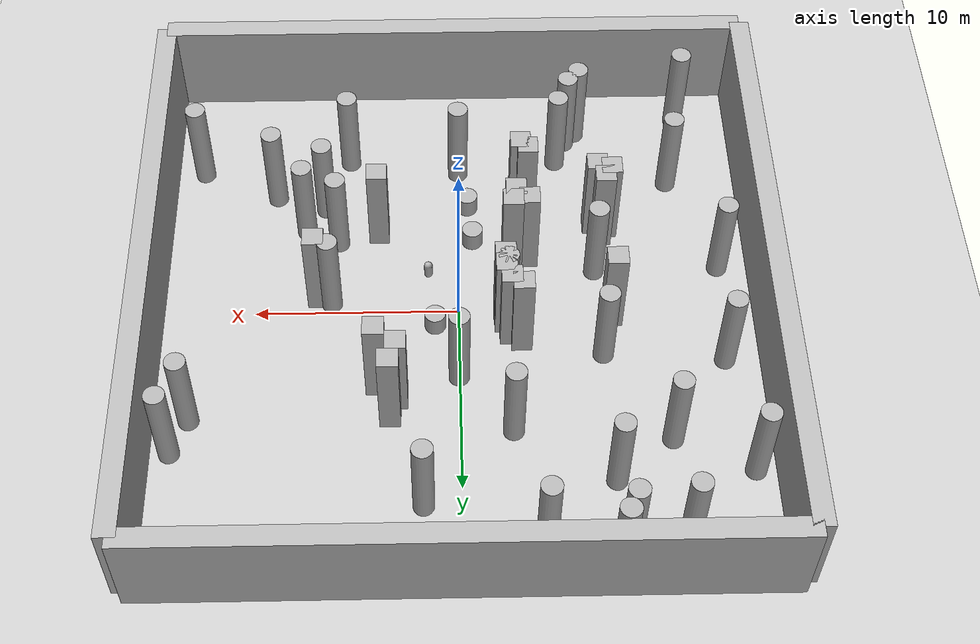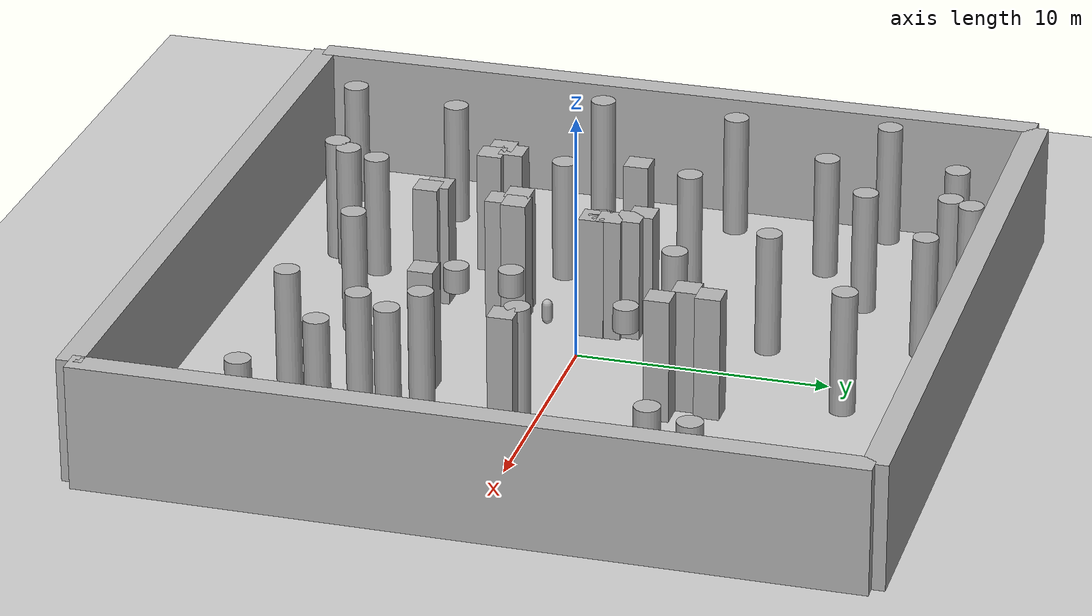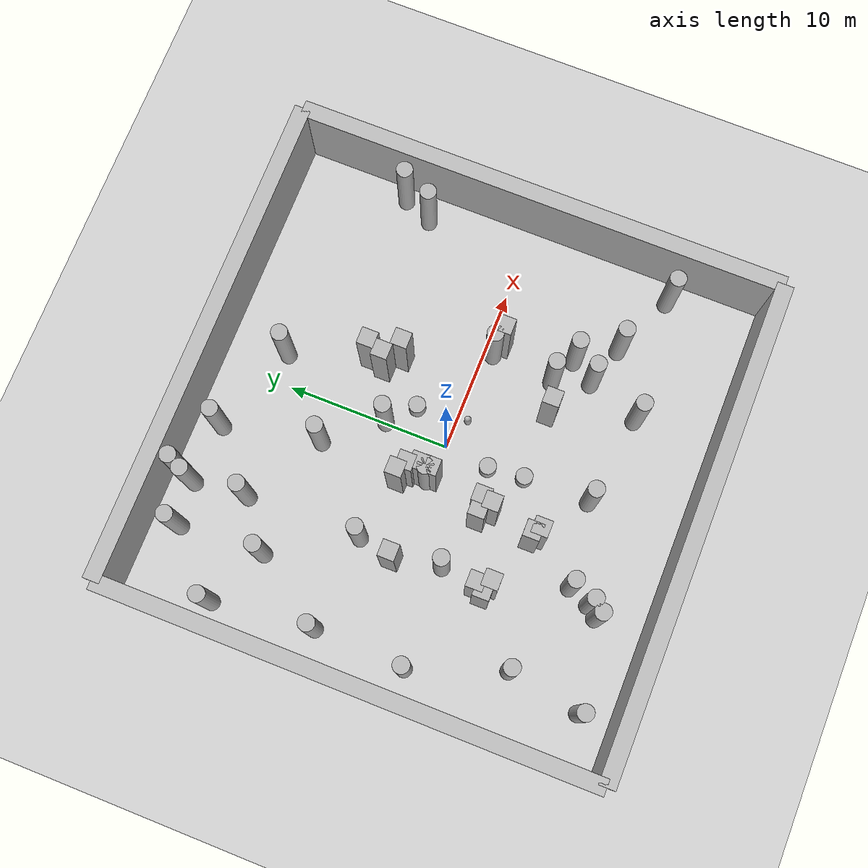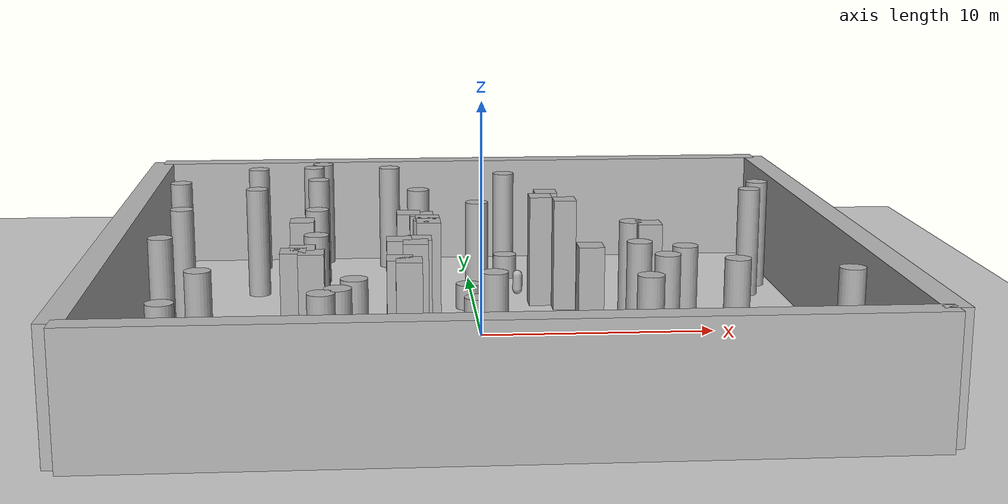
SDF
<sdf version="1.10">
 <world name="map">
  <physics name="1ms" type="ignored">
   <max_step_size>0.001</max_step_size>
   <real_time_factor>1</real_time_factor>
  </physics>
  <plugin filename="gz-sim-physics-system" name="gz::sim::systems::Physics"/>
  <plugin filename="gz-sim-sensors-system" name="gz::sim::systems::Sensors">
   <render_engine>ogre2</render_engine>
  </plugin>
  <plugin filename="gz-sim-user-commands-system" name="gz::sim::systems::UserCommands"/>
  <plugin filename="gz-sim-scene-broadcaster-system" name="gz::sim::systems::SceneBroadcaster"/>
  <plugin filename="gz-sim-air-pressure-system" name="gz::sim::systems::AirPressure"/>
  <plugin filename="gz-sim-air-speed-system" name="gz::sim::systems::AirSpeed"/>
  <plugin filename="gz-sim-altimeter-system" name="gz::sim::systems::Altimeter"/>
  <plugin filename="gz-sim-imu-system" name="gz::sim::systems::Imu"/>
  <plugin filename="gz-sim-magnetometer-system" name="gz::sim::systems::Magnetometer"/>
  <plugin filename="gz-sim-navsat-system" name="gz::sim::systems::NavSat"/>
  <atmosphere type="adiabatic"/>
  <scene>
   <ambient>0.400000006 0.400000006 0.400000006 1</ambient>
   <background>0.699999988 0.699999988 0.699999988 1</background>
   <shadows>true</shadows>
  </scene>
  <model name="ground_plane">
   <static>true</static>
   <link name="link">
    <collision name="collision">
     <geometry><plane><normal>0 0 1</normal><size>100 100</size></plane></geometry>
    </collision>
    <visual name="visual">
     <geometry><plane><normal>0 0 1</normal><size>100 100</size></plane></geometry>
     <material>
      <ambient>0.800000012 0.800000012 0.800000012 1</ambient>
      <diffuse>0.800000012 0.800000012 0.800000012 1</diffuse>
      <specular>0.800000012 0.800000012 0.800000012 1</specular>
     </material>
    </visual>
    <inertial>
     <mass>1</mass>
     <inertia><ixx>1</ixx><ixy>0</ixy><ixz>0</ixz><iyy>1</iyy><iyz>0</iyz><izz>1</izz></inertia>
    </inertial>
   </link>
  </model>
  <model name="box">
   <pose>3.3245237272664223 6.137337572602199 2.5 0 0 0</pose>
   <link name="box_link">
    <inertial>
     <inertia><ixx>0.16666</ixx><ixy>0</ixy><ixz>0</ixz><iyy>0.16666</iyy><iyz>0</iyz><izz>0.16666</izz></inertia>
     <mass>1</mass>
    </inertial>
    <collision name="box_collision"><geometry><box><size>1 1 5</size></box></geometry></collision>
    <visual name="box_visual">
     <geometry><box><size>1 1 5</size></box></geometry>
     <material>
      <ambient>0.300000012 0.300000012 0.300000012 1</ambient>
      <diffuse>0.699999988 0.699999988 0.699999988 1</diffuse>
      <specular>1 1 1 1</specular>
     </material>
    </visual>
   </link>
   <static>false</static>
  </model>
  <model name="cylinder">
   <pose>-0.72203590736623369 -2.8243370734408528 2.5 0 0 0</pose>
   <link name="cylinder_link">
    <inertial>
     <inertia>
      <ixx>0.14580000000000001</ixx>
      <ixy>0</ixy>
      <ixz>0</ixz>
      <iyy>0.14580000000000001</iyy>
      <iyz>0</iyz>
      <izz>0.125</izz>
     </inertia>
     <mass>1</mass>
    </inertial>
    <collision name="cylinder_collision">
     <geometry><cylinder><radius>0.5</radius><length>1</length></cylinder></geometry>
    </collision>
    <visual name="cylinder_visual">
     <geometry><cylinder><radius>0.5</radius><length>1</length></cylinder></geometry>
     <material>
      <ambient>0.300000012 0.300000012 0.300000012 1</ambient>
      <diffuse>0.699999988 0.699999988 0.699999988 1</diffuse>
      <specular>1 1 1 1</specular>
     </material>
    </visual>
   </link>
   <static>false</static>
  </model>
  <model name="box_0">
   <pose>2.9897288248366607 5.15230320680541 2.5 0 0 0</pose>
   <link name="box_link">
    <inertial>
     <inertia><ixx>0.16666</ixx><ixy>0</ixy><ixz>0</ixz><iyy>0.16666</iyy><iyz>0</iyz><izz>0.16666</izz></inertia>
     <mass>1</mass>
    </inertial>
    <collision name="box_collision"><geometry><box><size>1 1 5</size></box></geometry></collision>
    <visual name="box_visual">
     <geometry><box><size>1 1 5</size></box></geometry>
     <material>
      <ambient>0.300000012 0.300000012 0.300000012 1</ambient>
      <diffuse>0.699999988 0.699999988 0.699999988 1</diffuse>
      <specular>1 1 1 1</specular>
     </material>
    </visual>
   </link>
   <static>false</static>
  </model>
  <model name="box_1">
   <pose>3.9948109669313716 4.3431861216919927 2.5 0 0 0</pose>
   <link name="box_link">
    <inertial>
     <inertia><ixx>0.16666</ixx><ixy>0</ixy><ixz>0</ixz><iyy>0.16666</iyy><iyz>0</iyz><izz>0.16666</izz></inertia>
     <mass>1</mass>
    </inertial>
    <collision name="box_collision"><geometry><box><size>1 1 5</size></box></geometry></collision>
    <visual name="box_visual">
     <geometry><box><size>1 1 5</size></box></geometry>
     <material>
      <ambient>0.300000012 0.300000012 0.300000012 1</ambient>
      <diffuse>0.699999988 0.699999988 0.699999988 1</diffuse>
      <specular>1 1 1 1</specular>
     </material>
    </visual>
   </link>
   <static>false</static>
  </model>
  <model name="box_2">
   <pose>-6.9158057635143422 -5.3925937900630387 2.5 0 0 0</pose>
   <link name="box_link">
    <inertial>
     <inertia><ixx>0.16666</ixx><ixy>0</ixy><ixz>0</ixz><iyy>0.16666</iyy><iyz>0</iyz><izz>0.16666</izz></inertia>
     <mass>1</mass>
    </inertial>
    <collision name="box_collision"><geometry><box><size>1 1 5</size></box></geometry></collision>
    <visual name="box_visual">
     <geometry><box><size>1 1 5</size></box></geometry>
     <material>
      <ambient>0.300000012 0.300000012 0.300000012 1</ambient>
      <diffuse>0.699999988 0.699999988 0.699999988 1</diffuse>
      <specular>1 1 1 1</specular>
     </material>
    </visual>
   </link>
   <static>false</static>
  </model>
  <model name="box_3">
   <pose>-7.6136462022371774 -5.142927832510038 2.5 0 0 0</pose>
   <link name="box_link">
    <inertial>
     <inertia><ixx>0.16666</ixx><ixy>0</ixy><ixz>0</ixz><iyy>0.16666</iyy><iyz>0</iyz><izz>0.16666</izz></inertia>
     <mass>1</mass>
    </inertial>
    <collision name="box_collision"><geometry><box><size>1 1 5</size></box></geometry></collision>
    <visual name="box_visual">
     <geometry><box><size>1 1 5</size></box></geometry>
     <material>
      <ambient>0.300000012 0.300000012 0.300000012 1</ambient>
      <diffuse>0.699999988 0.699999988 0.699999988 1</diffuse>
      <specular>1 1 1 1</specular>
     </material>
    </visual>
   </link>
   <static>false</static>
  </model>
  <model name="box_4">
   <pose>-7.2855342701932955 -4.6225314286755168 2.5 0 0 0</pose>
   <link name="box_link">
    <inertial>
     <inertia><ixx>0.16666</ixx><ixy>0</ixy><ixz>0</ixz><iyy>0.16666</iyy><iyz>0</iyz><izz>0.16666</izz></inertia>
     <mass>1</mass>
    </inertial>
    <collision name="box_collision"><geometry><box><size>1 1 5</size></box></geometry></collision>
    <visual name="box_visual">
     <geometry><box><size>1 1 5</size></box></geometry>
     <material>
      <ambient>0.300000012 0.300000012 0.300000012 1</ambient>
      <diffuse>0.699999988 0.699999988 0.699999988 1</diffuse>
      <specular>1 1 1 1</specular>
     </material>
    </visual>
   </link>
   <static>false</static>
  </model>
  <model name="box_5">
   <pose>-3.0213739192808333 1.8634544273041493 2.5 0 0 0</pose>
   <link name="box_link">
    <inertial>
     <inertia><ixx>0.16666</ixx><ixy>0</ixy><ixz>0</ixz><iyy>0.16666</iyy><iyz>0</iyz><izz>0.16666</izz></inertia>
     <mass>1</mass>
    </inertial>
    <collision name="box_collision"><geometry><box><size>1 1 5</size></box></geometry></collision>
    <visual name="box_visual">
     <geometry><box><size>1 1 5</size></box></geometry>
     <material>
      <ambient>0.300000012 0.300000012 0.300000012 1</ambient>
      <diffuse>0.699999988 0.699999988 0.699999988 1</diffuse>
      <specular>1 1 1 1</specular>
     </material>
    </visual>
   </link>
   <static>false</static>
  </model>
  <model name="box_6">
   <pose>-2.4786264444795165 1.475592770159146 2.5 0 0 0</pose>
   <link name="box_link">
    <inertial>
     <inertia><ixx>0.16666</ixx><ixy>0</ixy><ixz>0</ixz><iyy>0.16666</iyy><iyz>0</iyz><izz>0.16666</izz></inertia>
     <mass>1</mass>
    </inertial>
    <collision name="box_collision"><geometry><box><size>1 1 5</size></box></geometry></collision>
    <visual name="box_visual">
     <geometry><box><size>1 1 5</size></box></geometry>
     <material>
      <ambient>0.300000012 0.300000012 0.300000012 1</ambient>
      <diffuse>0.699999988 0.699999988 0.699999988 1</diffuse>
      <specular>1 1 1 1</specular>
     </material>
    </visual>
   </link>
   <static>false</static>
  </model>
  <model name="box_7">
   <pose>-2.2465629230384287 0.76769296150061628 2.5 0 0 0</pose>
   <link name="box_link">
    <inertial>
     <inertia><ixx>0.16666</ixx><ixy>0</ixy><ixz>0</ixz><iyy>0.16666</iyy><iyz>0</iyz><izz>0.16666</izz></inertia>
     <mass>1</mass>
    </inertial>
    <collision name="box_collision"><geometry><box><size>1 1 5</size></box></geometry></collision>
    <visual name="box_visual">
     <geometry><box><size>1 1 5</size></box></geometry>
     <material>
      <ambient>0.300000012 0.300000012 0.300000012 1</ambient>
      <diffuse>0.699999988 0.699999988 0.699999988 1</diffuse>
      <specular>1 1 1 1</specular>
     </material>
    </visual>
   </link>
   <static>false</static>
  </model>
  <model name="box_8">
   <pose>-2.2234519485298136 0.095993541585208675 2.5 0 0 0</pose>
   <link name="box_link">
    <inertial>
     <inertia><ixx>0.16666</ixx><ixy>0</ixy><ixz>0</ixz><iyy>0.16666</iyy><iyz>0</iyz><izz>0.16666</izz></inertia>
     <mass>1</mass>
    </inertial>
    <collision name="box_collision"><geometry><box><size>1 1 5</size></box></geometry></collision>
    <visual name="box_visual">
     <geometry><box><size>1 1 5</size></box></geometry>
     <material>
      <ambient>0.300000012 0.300000012 0.300000012 1</ambient>
      <diffuse>0.699999988 0.699999988 0.699999988 1</diffuse>
      <specular>1 1 1 1</specular>
     </material>
    </visual>
   </link>
   <static>false</static>
  </model>
  <model name="cylinder_0">
   <pose>-0.50989404792879967 -4.9760559913132347 2.5 0 0 0</pose>
   <link name="cylinder_link">
    <inertial>
     <inertia>
      <ixx>0.14580000000000001</ixx>
      <ixy>0</ixy>
      <ixz>0</ixz>
      <iyy>0.14580000000000001</iyy>
      <iyz>0</iyz>
      <izz>0.125</izz>
     </inertia>
     <mass>1</mass>
    </inertial>
    <collision name="cylinder_collision">
     <geometry><cylinder><radius>0.5</radius><length>1</length></cylinder></geometry>
    </collision>
    <visual name="cylinder_visual">
     <geometry><cylinder><radius>0.5</radius><length>1</length></cylinder></geometry>
     <material>
      <ambient>0.300000012 0.300000012 0.300000012 1</ambient>
      <diffuse>0.699999988 0.699999988 0.699999988 1</diffuse>
      <specular>1 1 1 1</specular>
     </material>
    </visual>
   </link>
   <static>false</static>
  </model>
  <model name="capsule">
   <pose>1.4533725246880671 -0.74794199459035937 2.5 0 0 0</pose>
   <link name="capsule_link">
    <inertial>
     <inertia>
      <ixx>0.074153999999999998</ixx>
      <ixy>0</ixy>
      <ixz>0</ixz>
      <iyy>0.074153999999999998</iyy>
      <iyz>0</iyz>
      <izz>0.018769000000000001</izz>
     </inertia>
     <mass>1</mass>
    </inertial>
    <collision name="capsule_collision">
     <geometry>
      <capsule><radius>0.20000000000000001</radius><length>0.59999999999999998</length></capsule>
     </geometry>
    </collision>
    <visual name="capsule_visual">
     <geometry>
      <capsule><radius>0.20000000000000001</radius><length>0.59999999999999998</length></capsule>
     </geometry>
     <material>
      <ambient>0.300000012 0.300000012 0.300000012 1</ambient>
      <diffuse>0.699999988 0.699999988 0.699999988 1</diffuse>
      <specular>1 1 1 1</specular>
     </material>
    </visual>
   </link>
   <static>false</static>
  </model>
  <model name="cylinder_1">
   <pose>1.1536750640728535 2.2748950176591531 2.5 0 0 0</pose>
   <link name="cylinder_link">
    <inertial>
     <inertia>
      <ixx>0.14580000000000001</ixx>
      <ixy>0</ixy>
      <ixz>0</ixz>
      <iyy>0.14580000000000001</iyy>
      <iyz>0</iyz>
      <izz>0.125</izz>
     </inertia>
     <mass>1</mass>
    </inertial>
    <collision name="cylinder_collision">
     <geometry><cylinder><radius>0.5</radius><length>1</length></cylinder></geometry>
    </collision>
    <visual name="cylinder_visual">
     <geometry><cylinder><radius>0.5</radius><length>1</length></cylinder></geometry>
     <material>
      <ambient>0.300000012 0.300000012 0.300000012 1</ambient>
      <diffuse>0.699999988 0.699999988 0.699999988 1</diffuse>
      <specular>1 1 1 1</specular>
     </material>
    </visual>
   </link>
   <static>false</static>
  </model>
  <model name="box_9">
   <pose>6.9234266521545145 -0.89752316878740324 2.5 0 0 0</pose>
   <link name="box_link">
    <inertial>
     <inertia><ixx>0.16666</ixx><ixy>0</ixy><ixz>0</ixz><iyy>0.16666</iyy><iyz>0</iyz><izz>0.16666</izz></inertia>
     <mass>1</mass>
    </inertial>
    <collision name="box_collision"><geometry><box><size>1 1 5</size></box></geometry></collision>
    <visual name="box_visual">
     <geometry><box><size>1 1 5</size></box></geometry>
     <material>
      <ambient>0.300000012 0.300000012 0.300000012 1</ambient>
      <diffuse>0.699999988 0.699999988 0.699999988 1</diffuse>
      <specular>1 1 1 1</specular>
     </material>
    </visual>
   </link>
   <static>false</static>
  </model>
  <model name="box_10">
   <pose>-7.4943273373032717 0.47922763391659196 2.5 0 0 0</pose>
   <link name="box_link">
    <inertial>
     <inertia><ixx>0.16666</ixx><ixy>0</ixy><ixz>0</ixz><iyy>0.16666</iyy><iyz>0</iyz><izz>0.16666</izz></inertia>
     <mass>1</mass>
    </inertial>
    <collision name="box_collision"><geometry><box><size>1 1 5</size></box></geometry></collision>
    <visual name="box_visual">
     <geometry><box><size>1 1 5</size></box></geometry>
     <material>
      <ambient>0.300000012 0.300000012 0.300000012 1</ambient>
      <diffuse>0.699999988 0.699999988 0.699999988 1</diffuse>
      <specular>1 1 1 1</specular>
     </material>
    </visual>
   </link>
   <static>false</static>
  </model>
  <model name="box_11">
   <pose>3.9416168242545098 -4.9045093547489529 2.5 0 0 0</pose>
   <link name="box_link">
    <inertial>
     <inertia><ixx>0.16666</ixx><ixy>0</ixy><ixz>0</ixz><iyy>0.16666</iyy><iyz>0</iyz><izz>0.16666</izz></inertia>
     <mass>1</mass>
    </inertial>
    <collision name="box_collision"><geometry><box><size>1 1 5</size></box></geometry></collision>
    <visual name="box_visual">
     <geometry><box><size>1 1 5</size></box></geometry>
     <material>
      <ambient>0.300000012 0.300000012 0.300000012 1</ambient>
      <diffuse>0.699999988 0.699999988 0.699999988 1</diffuse>
      <specular>1 1 1 1</specular>
     </material>
    </visual>
   </link>
   <static>false</static>
  </model>
  <model name="box_12">
   <pose>-3.1907677776918426 -6.9076576333268314 2.5 0 0 0</pose>
   <link name="box_link">
    <inertial>
     <inertia><ixx>0.16666</ixx><ixy>0</ixy><ixz>0</ixz><iyy>0.16666</iyy><iyz>0</iyz><izz>0.16666</izz></inertia>
     <mass>1</mass>
    </inertial>
    <collision name="box_collision"><geometry><box><size>1 1 5</size></box></geometry></collision>
    <visual name="box_visual">
     <geometry><box><size>1 1 5</size></box></geometry>
     <material>
      <ambient>0.300000012 0.300000012 0.300000012 1</ambient>
      <diffuse>0.699999988 0.699999988 0.699999988 1</diffuse>
      <specular>1 1 1 1</specular>
     </material>
    </visual>
   </link>
   <static>false</static>
  </model>
  <model name="box_13">
   <pose>-3.5319714827078954 -6.55103836573966 2.5 0 0 0</pose>
   <link name="box_link">
    <inertial>
     <inertia><ixx>0.16666</ixx><ixy>0</ixy><ixz>0</ixz><iyy>0.16666</iyy><iyz>0</iyz><izz>0.16666</izz></inertia>
     <mass>1</mass>
    </inertial>
    <collision name="box_collision"><geometry><box><size>1 1 5</size></box></geometry></collision>
    <visual name="box_visual">
     <geometry><box><size>1 1 5</size></box></geometry>
     <material>
      <ambient>0.300000012 0.300000012 0.300000012 1</ambient>
      <diffuse>0.699999988 0.699999988 0.699999988 1</diffuse>
      <specular>1 1 1 1</specular>
     </material>
    </visual>
   </link>
   <static>false</static>
  </model>
  <model name="box_14">
   <pose>-3.5026384362716669 -3.2829280644309637 2.5 0 0 0</pose>
   <link name="box_link">
    <inertial>
     <inertia><ixx>0.16666</ixx><ixy>0</ixy><ixz>0</ixz><iyy>0.16666</iyy><iyz>0</iyz><izz>0.16666</izz></inertia>
     <mass>1</mass>
    </inertial>
    <collision name="box_collision"><geometry><box><size>1 1 5</size></box></geometry></collision>
    <visual name="box_visual">
     <geometry><box><size>1 1 5</size></box></geometry>
     <material>
      <ambient>0.300000012 0.300000012 0.300000012 1</ambient>
      <diffuse>0.699999988 0.699999988 0.699999988 1</diffuse>
      <specular>1 1 1 1</specular>
     </material>
    </visual>
   </link>
   <static>false</static>
  </model>
  <model name="box_15">
   <pose>-2.8649395179991046 -3.8670036450438285 2.5 0 0 0</pose>
   <link name="box_link">
    <inertial>
     <inertia><ixx>0.16666</ixx><ixy>0</ixy><ixz>0</ixz><iyy>0.16666</iyy><iyz>0</iyz><izz>0.16666</izz></inertia>
     <mass>1</mass>
    </inertial>
    <collision name="box_collision"><geometry><box><size>1 1 5</size></box></geometry></collision>
    <visual name="box_visual">
     <geometry><box><size>1 1 5</size></box></geometry>
     <material>
      <ambient>0.300000012 0.300000012 0.300000012 1</ambient>
      <diffuse>0.699999988 0.699999988 0.699999988 1</diffuse>
      <specular>1 1 1 1</specular>
     </material>
    </visual>
   </link>
   <static>false</static>
  </model>
  <model name="box_16">
   <pose>-2.7119486695131449 -3.1823662800570904 2.5 0 0 0</pose>
   <link name="box_link">
    <inertial>
     <inertia><ixx>0.16666</ixx><ixy>0</ixy><ixz>0</ixz><iyy>0.16666</iyy><iyz>0</iyz><izz>0.16666</izz></inertia>
     <mass>1</mass>
    </inertial>
    <collision name="box_collision"><geometry><box><size>1 1 5</size></box></geometry></collision>
    <visual name="box_visual">
     <geometry><box><size>1 1 5</size></box></geometry>
     <material>
      <ambient>0.300000012 0.300000012 0.300000012 1</ambient>
      <diffuse>0.699999988 0.699999988 0.699999988 1</diffuse>
      <specular>1 1 1 1</specular>
     </material>
    </visual>
   </link>
   <static>false</static>
  </model>
  <light name="sun" type="directional">
   <pose>0 0 10 0 0 0</pose>
   <intensity>1</intensity>
   <direction>-0.5 0.10000000000000001 -0.90000000000000002</direction>
   <diffuse>0.800000012 0.800000012 0.800000012 1</diffuse>
   <specular>0.200000003 0.200000003 0.200000003 1</specular>
   <attenuation>
    <range>1000</range>
    <linear>0.01</linear>
    <constant>0.90000000000000002</constant>
    <quadratic>0.001</quadratic>
   </attenuation>
   <spot><inner_angle>0</inner_angle><outer_angle>0</outer_angle><falloff>0</falloff></spot>
  </light>
  <model name="wall_north">
   <pose>0 15 2.5 0 0 0</pose>
   <static>true</static>
   <link name="wall_link">
    <collision name="wall_collision"><geometry><box><size>30 1 5</size></box></geometry></collision>
    <visual name="wall_visual"><geometry><box><size>30 1 5</size></box></geometry></visual>
   </link>
  </model>
  <model name="wall_south">
   <pose>0 -15 2.5 0 0 0</pose>
   <static>true</static>
   <link name="wall_link">
    <collision name="wall_collision"><geometry><box><size>30 1 5</size></box></geometry></collision>
    <visual name="wall_visual"><geometry><box><size>30 1 5</size></box></geometry></visual>
   </link>
  </model>
  <model name="wall_east">
   <pose>15 0 2.5 0 0 0</pose>
   <static>true</static>
   <link name="wall_link">
    <collision name="wall_collision"><geometry><box><size>1 30 5</size></box></geometry></collision>
    <visual name="wall_visual"><geometry><box><size>1 30 5</size></box></geometry></visual>
   </link>
  </model>
  <model name="wall_west">
   <pose>-15 0 2.5 0 0 0</pose>
   <static>true</static>
   <link name="wall_link">
    <collision name="wall_collision"><geometry><box><size>1 30 5</size></box></geometry></collision>
    <visual name="wall_visual"><geometry><box><size>1 30 5</size></box></geometry></visual>
   </link>
  </model>
  <include><uri>model://pillar</uri><name>pillar_0</name><pose>13.58 7.97 2.50 0 0 0</pose></include>
  <include><uri>model://pillar</uri><name>pillar_1</name><pose>-11.75 -12.62 2.50 0 0 0</pose></include>
  <include><uri>model://pillar</uri><name>pillar_2</name><pose>-6.35 -11.66 2.50 0 0 0</pose></include>
  <include><uri>model://pillar</uri><name>pillar_3</name><pose>-10.95 -8.11 2.50 0 0 0</pose></include>
  <include><uri>model://pillar</uri><name>pillar_4</name><pose>-2.37 0.35 2.50 0 0 0</pose></include>
  <include><uri>model://pillar</uri><name>pillar_5</name><pose>-7.44 13.06 2.50 0 0 0</pose></include>
  <include><uri>model://pillar</uri><name>pillar_6</name><pose>-6.95 2.71 2.50 0 0 0</pose></include>
  <include><uri>model://pillar</uri><name>pillar_7</name><pose>13.12 -9.15 2.50 0 0 0</pose></include>
  <include><uri>model://pillar</uri><name>pillar_8</name><pose>6.69 -6.62 2.50 0 0 0</pose></include>
  <include><uri>model://pillar</uri><name>pillar_9</name><pose>-5.22 -9.68 2.50 0 0 0</pose></include>
  <include><uri>model://pillar</uri><name>pillar_10</name><pose>-7.01 13.96 2.50 0 0 0</pose></include>
  <include><uri>model://pillar</uri><name>pillar_11</name><pose>-7.10 9.75 2.50 0 0 0</pose></include>
  <include><uri>model://pillar</uri><name>pillar_12</name><pose>-3.73 12.85 2.50 0 0 0</pose></include>
  <include><uri>model://pillar</uri><name>pillar_13</name><pose>-2.46 7.00 2.50 0 0 0</pose></include>
  <include><uri>model://pillar</uri><name>pillar_14</name><pose>7.63 -5.20 2.50 0 0 0</pose></include>
  <include><uri>model://pillar</uri><name>pillar_15</name><pose>5.97 -4.39 2.50 0 0 0</pose></include>
  <include><uri>model://pillar</uri><name>pillar_16</name><pose>12.82 6.19 2.50 0 0 0</pose></include>
  <include><uri>model://pillar</uri><name>pillar_17</name><pose>0.04 3.90 2.50 0 0 0</pose></include>
  <include><uri>model://pillar</uri><name>pillar_18</name><pose>-12.80 3.15 2.50 0 0 0</pose></include>
  <include><uri>model://pillar</uri><name>pillar_19</name><pose>1.78 10.93 2.50 0 0 0</pose></include>
  <include><uri>model://pillar</uri><name>pillar_20</name><pose>6.24 -0.55 2.50 0 0 0</pose></include>
  <include><uri>model://pillar</uri><name>pillar_21</name><pose>-0.11 -8.99 2.50 0 0 0</pose></include>
  <include><uri>model://pillar</uri><name>pillar_22</name><pose>-13.53 9.33 2.50 0 0 0</pose></include>
  <include><uri>model://pillar</uri><name>pillar_23</name><pose>-10.13 12.78 2.50 0 0 0</pose></include>
  <include><uri>model://pillar</uri><name>pillar_24</name><pose>-5.78 -11.03 2.50 0 0 0</pose></include>
  <include><uri>model://pillar</uri><name>pillar_25</name><pose>5.50 -9.82 2.50 0 0 0</pose></include>
  <include><uri>model://pillar</uri><name>pillar_26</name><pose>9.22 -7.44 2.50 0 0 0</pose></include>
  <include><uri>model://pillar</uri><name>pillar_27</name><pose>-9.87 7.58 2.50 0 0 0</pose></include>
  <include><uri>model://pillar</uri><name>pillar_28</name><pose>-13.02 -2.48 2.50 0 0 0</pose></include>
  <include><uri>model://pillar</uri><name>pillar_29</name><pose>-6.81 -2.37 2.50 0 0 0</pose></include>
 </world>
</sdf>

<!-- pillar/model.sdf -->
<sdf version="1.10">
  <model name="pillar">
    <static>true</static>
    <link name="pillar_link">
      <inertial>
        <mass>1</mass>
        <inertia>
          <ixx>0.1458</ixx>
          <iyy>0.1458</iyy>
          <izz>0.125</izz>
          <ixy>0</ixy><ixz>0</ixz><iyz>0</iyz>
        </inertia>
      </inertial>
      <collision name="pillar_collision">
        <geometry>
          <cylinder>
            <!-- 半径0.5m、高さ1m -->
            <radius>0.5</radius>
            <length>5</length>
          </cylinder>
        </geometry>
        <surface><friction><ode/></friction></surface>
      </collision>
      <visual name="pillar_visual">
        <geometry>
          <cylinder>
            <radius>0.5</radius>
            <length>5</length>
          </cylinder>
        </geometry>
        <material>
          <ambient>0.3 0.3 0.3 1</ambient>
          <diffuse>0.7 0.7 0.7 1</diffuse>
        </material>
      </visual>
      <pose>0 0 0 0 0 0</pose>
    </link>
    <pose>0 0 0 0 0 0</pose>
  </model>
</sdf>
